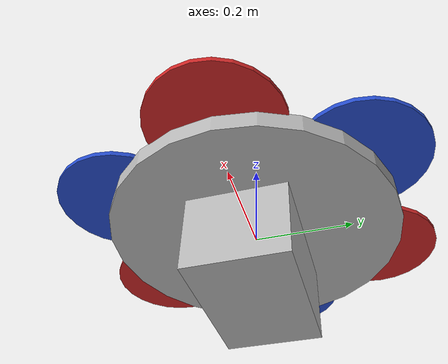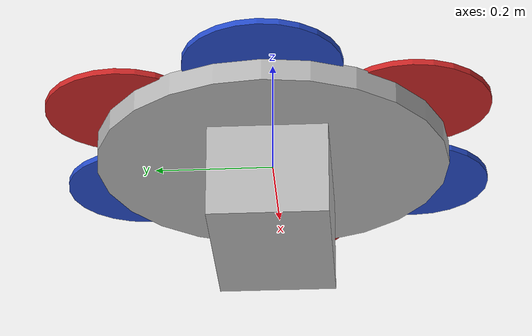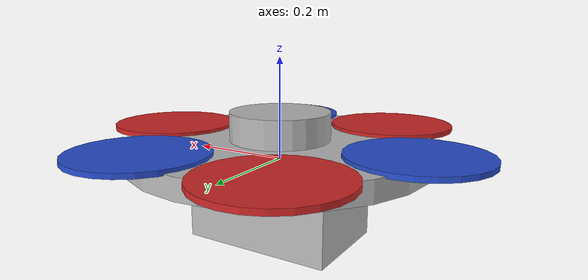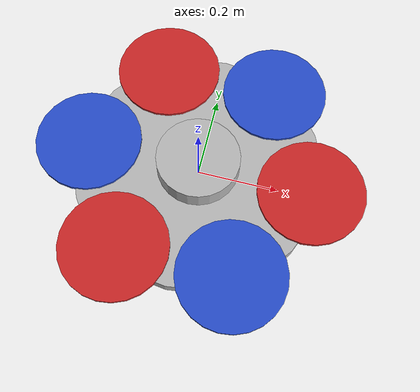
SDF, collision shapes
<sdf version='1.6'>
  <model name='wasp'>
    <link name='base_link'>
      <pose frame=''>0 0 0 0 -0 0</pose>
      <inertial>
        <pose frame=''>0 0 -0.1 0 -0 0</pose>
        <mass>1</mass>
        <inertia>
          <ixx>0.038</ixx>
          <ixy>0</ixy>
          <ixz>0</ixz>
          <iyy>0.043</iyy>
          <iyz>0</iyz>
          <izz>0.0068</izz>
        </inertia>
      </inertial>
      <collision name='base_link_fixed_joint_lump__frame_collision'>
        <pose frame=''>0 0 0.02 0 -0 0</pose>
        <geometry>
          <cylinder>
            <length>0.04</length>
            <radius>0.3</radius>
          </cylinder>
        </geometry>
      </collision>
      <collision name='base_link_fixed_joint_lump__rollcage_collision_1'>
        <pose frame=''>0 0 0.066 0 -0 0</pose>
        <geometry>
          <cylinder>
            <length>0.06</length>
            <radius>0.1</radius>
          </cylinder>
        </geometry>
      </collision>
      <collision name='base_link_fixed_joint_lump__lander_collision_2'>
        <pose frame=''>0 0 -0.08 0 -0 0</pose>
        <geometry>
          <box>
            <size>0.3 0.2 0.16</size>
          </box>
        </geometry>
      </collision>
      <visual name='base_link_visual'>
        <pose frame=''>0 0 0 0 -0 0</pose>
        <geometry>
          <mesh>
            <scale>1 1 1</scale>
            <uri>model://wasp_gazebo/meshes/core.dae</uri>
          </mesh>
        </geometry>
        <material>
          <script>
            <uri>__default__</uri>
            <name>__default__</name>
          </script>
        </material>
      </visual>
      <visual name='base_link_fixed_joint_lump__arm_0_visual_1'>
        <pose frame=''>0.075 0 0.0125 0 -0 1.5708</pose>
        <geometry>
          <mesh>
            <scale>1 1 1</scale>
            <uri>model://wasp/meshes/wasp_arm.dae</uri>
          </mesh>
        </geometry>
      </visual>
      <visual name='base_link_fixed_joint_lump__motor_0_visual_2'>
        <pose frame=''>0.277 0 0.0125 0 -0 0</pose>
        <geometry>
          <mesh>
            <scale>1 1 1</scale>
            <uri>model://wasp/meshes/wasp_motor.dae</uri>
          </mesh>
        </geometry>
      </visual>
      <visual name='base_link_fixed_joint_lump__arm_1_visual_3'>
        <pose frame=''>0.0375 0.064952 0.0125 0 -0 2.61799</pose>
        <geometry>
          <mesh>
            <scale>1 1 1</scale>
            <uri>model://wasp/meshes/wasp_arm.dae</uri>
          </mesh>
        </geometry>
      </visual>
      <visual name='base_link_fixed_joint_lump__motor_1_visual_4'>
        <pose frame=''>0.1385 0.239889 0.0125 0 -0 0</pose>
        <geometry>
          <mesh>
            <scale>1 1 1</scale>
            <uri>model://wasp/meshes/wasp_motor.dae</uri>
          </mesh>
        </geometry>
      </visual>
      <visual name='base_link_fixed_joint_lump__arm_2_visual_5'>
        <pose frame=''>-0.0375 0.064952 0.0125 0 -0 -2.61799</pose>
        <geometry>
          <mesh>
            <scale>1 1 1</scale>
            <uri>model://wasp/meshes/wasp_arm.dae</uri>
          </mesh>
        </geometry>
      </visual>
      <visual name='base_link_fixed_joint_lump__motor_2_visual_6'>
        <pose frame=''>-0.1385 0.239889 0.0125 0 -0 0</pose>
        <geometry>
          <mesh>
            <scale>1 1 1</scale>
            <uri>model://wasp/meshes/wasp_motor.dae</uri>
          </mesh>
        </geometry>
      </visual>
      <visual name='base_link_fixed_joint_lump__arm_3_visual_7'>
        <pose frame=''>-0.075 0 0.0125 0 -0 -1.5708</pose>
        <geometry>
          <mesh>
            <scale>1 1 1</scale>
            <uri>model://wasp/meshes/wasp_arm.dae</uri>
          </mesh>
        </geometry>
      </visual>
      <visual name='base_link_fixed_joint_lump__motor_3_visual_8'>
        <pose frame=''>-0.277 0 0.0125 0 -0 0</pose>
        <geometry>
          <mesh>
            <scale>1 1 1</scale>
            <uri>model://wasp/meshes/wasp_motor.dae</uri>
          </mesh>
        </geometry>
      </visual>
      <visual name='base_link_fixed_joint_lump__arm_4_visual_9'>
        <pose frame=''>-0.0375 -0.064952 0.0125 0 -0 -0.523599</pose>
        <geometry>
          <mesh>
            <scale>1 1 1</scale>
            <uri>model://wasp/meshes/wasp_arm.dae</uri>
          </mesh>
        </geometry>
      </visual>
      <visual name='base_link_fixed_joint_lump__motor_4_visual_10'>
        <pose frame=''>-0.1385 -0.239889 0.0125 0 -0 0</pose>
        <geometry>
          <mesh>
            <scale>1 1 1</scale>
            <uri>model://wasp/meshes/wasp_motor.dae</uri>
          </mesh>
        </geometry>
      </visual>
      <visual name='base_link_fixed_joint_lump__arm_5_visual_11'>
        <pose frame=''>0.0375 -0.064952 0.0125 0 -0 0.523599</pose>
        <geometry>
          <mesh>
            <scale>1 1 1</scale>
            <uri>model://wasp/meshes/wasp_arm.dae</uri>
          </mesh>
        </geometry>
      </visual>
      <visual name='base_link_fixed_joint_lump__motor_5_visual_12'>
        <pose frame=''>0.1385 -0.239889 0.0125 0 -0 0</pose>
        <geometry>
          <mesh>
            <scale>1 1 1</scale>
            <uri>model://wasp/meshes/wasp_motor.dae</uri>
          </mesh>
        </geometry>
      </visual>
      <visual name='base_link_fixed_joint_lump__leg_0_visual_13'>
        <pose frame=''>0.08044 0.044648 -0.063 0 -0 2.0775</pose>
        <geometry>
          <mesh>
            <scale>1 1 1</scale>
            <uri>model://wasp/meshes/wasp_leg.dae</uri>
          </mesh>
        </geometry>
      </visual>
      <visual name='base_link_fixed_joint_lump__leg_1_visual_14'>
        <pose frame=''>0.08044 -0.044648 -0.063 0 -0 1.06409</pose>
        <geometry>
          <mesh>
            <scale>1 1 1</scale>
            <uri>model://wasp/meshes/wasp_leg.dae</uri>
          </mesh>
        </geometry>
      </visual>
      <visual name='base_link_fixed_joint_lump__leg_2_visual_15'>
        <pose frame=''>-0.08044 -0.044648 -0.063 0 -0 -1.06409</pose>
        <geometry>
          <mesh>
            <scale>1 1 1</scale>
            <uri>model://wasp/meshes/wasp_leg.dae</uri>
          </mesh>
        </geometry>
      </visual>
      <visual name='base_link_fixed_joint_lump__leg_3_visual_16'>
        <pose frame=''>-0.08044 0.044648 -0.063 0 -0 -2.0775</pose>
        <geometry>
          <mesh>
            <scale>1 1 1</scale>
            <uri>model://wasp/meshes/wasp_leg.dae</uri>
          </mesh>
        </geometry>
      </visual>
      <gravity>1</gravity>
      <velocity_decay/>
      <self_collide>0</self_collide>
    </link>
    <link name='rotor_0'>
      <pose frame=''>0.277 0 0.042 0 -0 0</pose>
      <inertial>
        <pose frame=''>0 0 0 0 -0 1.5708</pose>
        <mass>0.025</mass>
        <inertia>
          <ixx>9.75e-06</ixx>
          <ixy>0</ixy>
          <ixz>0</ixz>
          <iyy>0.0001667</iyy>
          <iyz>0</iyz>
          <izz>0.0001667</izz>
        </inertia>
      </inertial>
      <collision name='rotor_0_collision'>
        <pose frame=''>0 0 0 0 -0 1.5708</pose>
        <geometry>
          <cylinder>
            <length>0.01</length>
            <radius>0.13</radius>
          </cylinder>
        </geometry>
        <surface>
          <contact>
            <ode/>
          </contact>
          <friction>
            <ode/>
          </friction>
        </surface>
      </collision>
      <visual name='rotor_0_visual'>
        <pose frame=''>0 0 0 0 -0 1.5708</pose>
        <geometry>
          <mesh>
            <scale>1 1 1</scale>
            <uri>model://wasp/meshes/wasp_prop_cw.dae</uri>
          </mesh>
        </geometry>
        <material>
          <script>
            <name>Gazebo/Red</name>
            <uri>file://media/materials/scripts/gazebo.material</uri>
          </script>
        </material>
      </visual>
      <gravity>1</gravity>
      <velocity_decay/>
      <self_collide>0</self_collide>
    </link>
    <joint name='rotor_0_joint' type='revolute'>
      <child>rotor_0</child>
      <parent>base_link</parent>
      <axis>
        <xyz>0 0 1</xyz>
        <limit>
          <lower>-1e+16</lower>
          <upper>1e+16</upper>
        </limit>
        <dynamics>
          <damping>0.004</damping>
          <friction>0</friction>
          <spring_reference>0</spring_reference>
          <spring_stiffness>0</spring_stiffness>
        </dynamics>
        <use_parent_model_frame>0</use_parent_model_frame>
      </axis>
    </joint>
    <link name='rotor_1'>
      <pose frame=''>0.1385 0.239889 0.042 0 -0 0</pose>
      <inertial>
        <pose frame=''>0 0 0 0 -0 2.61799</pose>
        <mass>0.025</mass>
        <inertia>
          <ixx>9.75e-06</ixx>
          <ixy>0</ixy>
          <ixz>0</ixz>
          <iyy>0.0001667</iyy>
          <iyz>0</iyz>
          <izz>0.0001667</izz>
        </inertia>
      </inertial>
      <collision name='rotor_1_collision'>
        <pose frame=''>0 0 0 0 -0 2.61799</pose>
        <geometry>
          <cylinder>
            <length>0.01</length>
            <radius>0.13</radius>
          </cylinder>
        </geometry>
        <surface>
          <contact>
            <ode/>
          </contact>
          <friction>
            <ode/>
          </friction>
        </surface>
      </collision>
      <visual name='rotor_1_visual'>
        <pose frame=''>0 0 0 0 -0 2.61799</pose>
        <geometry>
          <mesh>
            <scale>1 1 1</scale>
            <uri>model://wasp/meshes/wasp_prop_ccw.dae</uri>
          </mesh>
        </geometry>
        <material>
          <script>
            <name>Gazebo/Blue</name>
            <uri>file://media/materials/scripts/gazebo.material</uri>
          </script>
        </material>
      </visual>
      <gravity>1</gravity>
      <velocity_decay/>
      <self_collide>0</self_collide>
    </link>
    <joint name='rotor_1_joint' type='revolute'>
      <child>rotor_1</child>
      <parent>base_link</parent>
      <axis>
        <xyz>0 0 1</xyz>
        <limit>
          <lower>-1e+16</lower>
          <upper>1e+16</upper>
        </limit>
        <dynamics>
          <damping>0.004</damping>
          <friction>0</friction>
          <spring_reference>0</spring_reference>
          <spring_stiffness>0</spring_stiffness>
        </dynamics>
        <use_parent_model_frame>0</use_parent_model_frame>
      </axis>
    </joint>
    <link name='rotor_2'>
      <pose frame=''>-0.1385 0.239889 0.042 0 -0 0</pose>
      <inertial>
        <pose frame=''>0 0 0 0 -0 -2.61799</pose>
        <mass>0.025</mass>
        <inertia>
          <ixx>9.75e-06</ixx>
          <ixy>0</ixy>
          <ixz>0</ixz>
          <iyy>0.0001667</iyy>
          <iyz>0</iyz>
          <izz>0.0001667</izz>
        </inertia>
      </inertial>
      <collision name='rotor_2_collision'>
        <pose frame=''>0 0 0 0 -0 -2.61799</pose>
        <geometry>
          <cylinder>
            <length>0.01</length>
            <radius>0.13</radius>
          </cylinder>
        </geometry>
        <surface>
          <contact>
            <ode/>
          </contact>
          <friction>
            <ode/>
          </friction>
        </surface>
      </collision>
      <visual name='rotor_2_visual'>
        <pose frame=''>0 0 0 0 -0 -2.61799</pose>
        <geometry>
          <mesh>
            <scale>1 1 1</scale>
            <uri>model://wasp/meshes/wasp_prop_cw.dae</uri>
          </mesh>
        </geometry>
        <material>
          <script>
            <name>Gazebo/Red</name>
            <uri>file://media/materials/scripts/gazebo.material</uri>
          </script>
        </material>
      </visual>
      <gravity>1</gravity>
      <velocity_decay/>
      <self_collide>0</self_collide>
    </link>
    <joint name='rotor_2_joint' type='revolute'>
      <child>rotor_2</child>
      <parent>base_link</parent>
      <axis>
        <xyz>0 0 1</xyz>
        <limit>
          <lower>-1e+16</lower>
          <upper>1e+16</upper>
        </limit>
        <dynamics>
          <damping>0.004</damping>
          <friction>0</friction>
          <spring_reference>0</spring_reference>
          <spring_stiffness>0</spring_stiffness>
        </dynamics>
        <use_parent_model_frame>0</use_parent_model_frame>
      </axis>
    </joint>
    <link name='rotor_3'>
      <pose frame=''>-0.277 0 0.042 0 -0 0</pose>
      <inertial>
        <pose frame=''>0 0 0 0 -0 -1.5708</pose>
        <mass>0.025</mass>
        <inertia>
          <ixx>9.75e-06</ixx>
          <ixy>0</ixy>
          <ixz>0</ixz>
          <iyy>0.0001667</iyy>
          <iyz>0</iyz>
          <izz>0.0001667</izz>
        </inertia>
      </inertial>
      <collision name='rotor_3_collision'>
        <pose frame=''>0 0 0 0 -0 -1.5708</pose>
        <geometry>
          <cylinder>
            <length>0.01</length>
            <radius>0.13</radius>
          </cylinder>
        </geometry>
        <surface>
          <contact>
            <ode/>
          </contact>
          <friction>
            <ode/>
          </friction>
        </surface>
      </collision>
      <visual name='rotor_3_visual'>
        <pose frame=''>0 0 0 0 -0 -1.5708</pose>
        <geometry>
          <mesh>
            <scale>1 1 1</scale>
            <uri>model://wasp/meshes/wasp_prop_ccw.dae</uri>
          </mesh>
        </geometry>
        <material>
          <script>
            <name>Gazebo/Blue</name>
            <uri>file://media/materials/scripts/gazebo.material</uri>
          </script>
        </material>
      </visual>
      <gravity>1</gravity>
      <velocity_decay/>
      <self_collide>0</self_collide>
    </link>
    <joint name='rotor_3_joint' type='revolute'>
      <child>rotor_3</child>
      <parent>base_link</parent>
      <axis>
        <xyz>0 0 1</xyz>
        <limit>
          <lower>-1e+16</lower>
          <upper>1e+16</upper>
        </limit>
        <dynamics>
          <damping>0.004</damping>
          <friction>0</friction>
          <spring_reference>0</spring_reference>
          <spring_stiffness>0</spring_stiffness>
        </dynamics>
        <use_parent_model_frame>0</use_parent_model_frame>
      </axis>
    </joint>
    <link name='rotor_4'>
      <pose frame=''>-0.1385 -0.239889 0.042 0 -0 0</pose>
      <inertial>
        <pose frame=''>0 0 0 0 -0 -0.523599</pose>
        <mass>0.025</mass>
        <inertia>
          <ixx>9.75e-06</ixx>
          <ixy>0</ixy>
          <ixz>0</ixz>
          <iyy>0.0001667</iyy>
          <iyz>0</iyz>
          <izz>0.0001667</izz>
        </inertia>
      </inertial>
      <collision name='rotor_4_collision'>
        <pose frame=''>0 0 0 0 -0 -0.523599</pose>
        <geometry>
          <cylinder>
            <length>0.01</length>
            <radius>0.13</radius>
          </cylinder>
        </geometry>
        <surface>
          <contact>
            <ode/>
          </contact>
          <friction>
            <ode/>
          </friction>
        </surface>
      </collision>
      <visual name='rotor_4_visual'>
        <pose frame=''>0 0 0 0 -0 -0.523599</pose>
        <geometry>
          <mesh>
            <scale>1 1 1</scale>
            <uri>model://wasp/meshes/wasp_prop_cw.dae</uri>
          </mesh>
        </geometry>
        <material>
          <script>
            <name>Gazebo/Red</name>
            <uri>file://media/materials/scripts/gazebo.material</uri>
          </script>
        </material>
      </visual>
      <gravity>1</gravity>
      <velocity_decay/>
      <self_collide>0</self_collide>
    </link>
    <joint name='rotor_4_joint' type='revolute'>
      <child>rotor_4</child>
      <parent>base_link</parent>
      <axis>
        <xyz>0 0 1</xyz>
        <limit>
          <lower>-1e+16</lower>
          <upper>1e+16</upper>
        </limit>
        <dynamics>
          <damping>0.004</damping>
          <friction>0</friction>
          <spring_reference>0</spring_reference>
          <spring_stiffness>0</spring_stiffness>
        </dynamics>
        <use_parent_model_frame>0</use_parent_model_frame>
      </axis>
    </joint>
    <link name='rotor_5'>
      <pose frame=''>0.1385 -0.239889 0.042 0 -0 0</pose>
      <inertial>
        <pose frame=''>0 0 0 0 -0 0.523599</pose>
        <mass>0.025</mass>
        <inertia>
          <ixx>9.75e-06</ixx>
          <ixy>0</ixy>
          <ixz>0</ixz>
          <iyy>0.0001667</iyy>
          <iyz>0</iyz>
          <izz>0.0001667</izz>
        </inertia>
      </inertial>
      <collision name='rotor_5_collision'>
        <pose frame=''>0 0 0 0 -0 0.523599</pose>
        <geometry>
          <cylinder>
            <length>0.01</length>
            <radius>0.13</radius>
          </cylinder>
        </geometry>
        <surface>
          <contact>
            <ode/>
          </contact>
          <friction>
            <ode/>
          </friction>
        </surface>
      </collision>
      <visual name='rotor_5_visual'>
        <pose frame=''>0 0 0 0 -0 0.523599</pose>
        <geometry>
          <mesh>
            <scale>1 1 1</scale>
            <uri>model://wasp/meshes/wasp_prop_ccw.dae</uri>
          </mesh>
        </geometry>
        <material>
          <script>
            <name>Gazebo/Blue</name>
            <uri>file://media/materials/scripts/gazebo.material</uri>
          </script>
        </material>
      </visual>
      <gravity>1</gravity>
      <velocity_decay/>
      <self_collide>0</self_collide>
    </link>
    <joint name='rotor_5_joint' type='revolute'>
      <child>rotor_5</child>
      <parent>base_link</parent>
      <axis>
        <xyz>0 0 1</xyz>
        <limit>
          <lower>-1e+16</lower>
          <upper>1e+16</upper>
        </limit>
        <dynamics>
          <damping>0.004</damping>
          <friction>0</friction>
          <spring_reference>0</spring_reference>
          <spring_stiffness>0</spring_stiffness>
        </dynamics>
        <use_parent_model_frame>0</use_parent_model_frame>
      </axis>
    </joint>
    <link name='wasp/ground_truth/odometry_sensorgt_link'>
      <pose frame=''>0 0 0 0 -0 0</pose>
      <inertial>
        <pose frame=''>0 0 0 0 -0 0</pose>
        <mass>0.15</mass>
        <inertia>
          <ixx>0.0001</ixx>
          <ixy>0</ixy>
          <ixz>0</ixz>
          <iyy>0.0002</iyy>
          <iyz>0</iyz>
          <izz>0.0002</izz>
        </inertia>
      </inertial>
      <self_collide>0</self_collide>
    </link>
    <joint name='wasp/ground_truth/odometry_sensorgt_joint' type='revolute'>
      <child>wasp/ground_truth/odometry_sensorgt_link</child>
      <parent>base_link</parent>
      <axis>
        <xyz>0 0 1</xyz>
        <limit>
          <lower>0</lower>
          <upper>0</upper>
          <effort>0</effort>
          <velocity>0</velocity>
        </limit>
        <dynamics>
          <damping>1</damping>
          <spring_reference>0</spring_reference>
          <spring_stiffness>0</spring_stiffness>
        </dynamics>
        <use_parent_model_frame>1</use_parent_model_frame>
      </axis>
      <physics>
        <ode>
          <implicit_spring_damper>1</implicit_spring_damper>
        </ode>
      </physics>
    </joint>
    <link name='wasp/imu_link'>
      <inertial>
        <pose frame=''>0 0 0 0 -0 0</pose>
        <mass>0.15</mass>
        <inertia>
          <ixx>1e-05</ixx>
          <ixy>0</ixy>
          <ixz>0</ixz>
          <iyy>2e-05</iyy>
          <iyz>0</iyz>
          <izz>2e-05</izz>
        </inertia>
      </inertial>
      <sensor name='imu_sensor' type='imu'>
        <pose frame=''>0 0 0 -3.14159 -0 0</pose>
        <always_on>1</always_on>
        <update_rate>1000</update_rate>
      </sensor>
      <self_collide>0</self_collide>
    </link>
    <joint name='wasp/imu_joint' type='revolute'>
      <child>wasp/imu_link</child>
      <parent>base_link</parent>
      <axis>
        <xyz>0 0 1</xyz>
        <limit>
          <lower>0</lower>
          <upper>0</upper>
          <effort>0</effort>
          <velocity>0</velocity>
        </limit>
        <dynamics>
          <damping>1</damping>
          <spring_reference>0</spring_reference>
          <spring_stiffness>0</spring_stiffness>
        </dynamics>
        <use_parent_model_frame>1</use_parent_model_frame>
      </axis>
      <physics>
        <ode>
          <implicit_spring_damper>1</implicit_spring_damper>
        </ode>
      </physics>
    </joint>
    <plugin name='rotor_0_blade_1' filename='libLiftDragPlugin.so'>
      <a0>0.3</a0>
      <alpha_stall>1.4</alpha_stall>
      <cla>4.2500</cla>
      <cda>0.10</cda>
      <cma>0.00</cma>
      <cla_stall>-0.025</cla_stall>
      <cda_stall>0.0</cda_stall>
      <cma_stall>0.0</cma_stall>
      <area>0.002</area>
      <air_density>1.2041</air_density>
      <cp>0.084 0 0</cp>
      <forward>0 1 0</forward>
      <upward>0 0 1</upward>
      <link_name>wasp::rotor_0</link_name>
    </plugin>
    <plugin name='rotor_0_blade_2' filename='libLiftDragPlugin.so'>
      <a0>0.3</a0>
      <alpha_stall>1.4</alpha_stall>
      <cla>4.2500</cla>
      <cda>0.10</cda>
      <cma>0.00</cma>
      <cla_stall>-0.025</cla_stall>
      <cda_stall>0.0</cda_stall>
      <cma_stall>0.0</cma_stall>
      <area>0.002</area>
      <air_density>1.2041</air_density>
      <cp>-0.084 0 0</cp>
      <forward>0 -1 0</forward>
      <upward>0 0 1</upward>
      <link_name>wasp::rotor_0</link_name>
    </plugin>
    <plugin name='rotor_1_blade_1' filename='libLiftDragPlugin.so'>
      <a0>0.3</a0>
      <alpha_stall>1.4</alpha_stall>
      <cla>4.2500</cla>
      <cda>0.10</cda>
      <cma>0.00</cma>
      <cla_stall>-0.025</cla_stall>
      <cda_stall>0.0</cda_stall>
      <cma_stall>0.0</cma_stall>
      <area>0.002</area>
      <air_density>1.2041</air_density>
      <cp>0.084 0 0</cp>
      <forward>0 -1 0</forward>
      <upward>0 0 1</upward>
      <link_name>wasp::rotor_1</link_name>
    </plugin>
    <plugin name='rotor_1_blade_2' filename='libLiftDragPlugin.so'>
      <a0>0.3</a0>
      <alpha_stall>1.4</alpha_stall>
      <cla>4.2500</cla>
      <cda>0.10</cda>
      <cma>0.00</cma>
      <cla_stall>-0.025</cla_stall>
      <cda_stall>0.0</cda_stall>
      <cma_stall>0.0</cma_stall>
      <area>0.002</area>
      <air_density>1.2041</air_density>
      <cp>-0.084 0 0</cp>
      <forward>0 1 0</forward>
      <upward>0 0 1</upward>
      <link_name>wasp::rotor_1</link_name>
    </plugin>
    <plugin name='rotor_2_blade_1' filename='libLiftDragPlugin.so'>
      <a0>0.3</a0>
      <alpha_stall>1.4</alpha_stall>
      <cla>4.2500</cla>
      <cda>0.10</cda>
      <cma>0.00</cma>
      <cla_stall>-0.025</cla_stall>
      <cda_stall>0.0</cda_stall>
      <cma_stall>0.0</cma_stall>
      <area>0.002</area>
      <air_density>1.2041</air_density>
      <cp>0.084 0 0</cp>
      <forward>0 1 0</forward>
      <upward>0 0 1</upward>
      <link_name>wasp::rotor_2</link_name>
    </plugin>
    <plugin name='rotor_2_blade_2' filename='libLiftDragPlugin.so'>
      <a0>0.3</a0>
      <alpha_stall>1.4</alpha_stall>
      <cla>4.2500</cla>
      <cda>0.10</cda>
      <cma>0.00</cma>
      <cla_stall>-0.025</cla_stall>
      <cda_stall>0.0</cda_stall>
      <cma_stall>0.0</cma_stall>
      <area>0.002</area>
      <air_density>1.2041</air_density>
      <cp>-0.084 0 0</cp>
      <forward>0 -1 0</forward>
      <upward>0 0 1</upward>
      <link_name>wasp::rotor_2</link_name>
    </plugin>
    <plugin name='rotor_3_blade_1' filename='libLiftDragPlugin.so'>
      <a0>0.3</a0>
      <alpha_stall>1.4</alpha_stall>
      <cla>4.2500</cla>
      <cda>0.10</cda>
      <cma>0.00</cma>
      <cla_stall>-0.025</cla_stall>
      <cda_stall>0.0</cda_stall>
      <cma_stall>0.0</cma_stall>
      <area>0.002</area>
      <air_density>1.2041</air_density>
      <cp>0.084 0 0</cp>
      <forward>0 -1 0</forward>
      <upward>0 0 1</upward>
      <link_name>wasp::rotor_3</link_name>
    </plugin>
    <plugin name='rotor_3_blade_2' filename='libLiftDragPlugin.so'>
      <a0>0.3</a0>
      <alpha_stall>1.4</alpha_stall>
      <cla>4.2500</cla>
      <cda>0.10</cda>
      <cma>0.00</cma>
      <cla_stall>-0.025</cla_stall>
      <cda_stall>0.0</cda_stall>
      <cma_stall>0.0</cma_stall>
      <area>0.002</area>
      <air_density>1.2041</air_density>
      <cp>-0.084 0 0</cp>
      <forward>0 1 0</forward>
      <upward>0 0 1</upward>
      <link_name>wasp::rotor_3</link_name>
    </plugin>
    <plugin name='rotor_4_blade_1' filename='libLiftDragPlugin.so'>
      <a0>0.3</a0>
      <alpha_stall>1.4</alpha_stall>
      <cla>4.2500</cla>
      <cda>0.10</cda>
      <cma>0.00</cma>
      <cla_stall>-0.025</cla_stall>
      <cda_stall>0.0</cda_stall>
      <cma_stall>0.0</cma_stall>
      <area>0.002</area>
      <air_density>1.2041</air_density>
      <cp>0.084 0 0</cp>
      <forward>0 1 0</forward>
      <upward>0 0 1</upward>
      <link_name>wasp::rotor_4</link_name>
    </plugin>
    <plugin name='rotor_4_blade_2' filename='libLiftDragPlugin.so'>
      <a0>0.3</a0>
      <alpha_stall>1.4</alpha_stall>
      <cla>4.2500</cla>
      <cda>0.10</cda>
      <cma>0.00</cma>
      <cla_stall>-0.025</cla_stall>
      <cda_stall>0.0</cda_stall>
      <cma_stall>0.0</cma_stall>
      <area>0.002</area>
      <air_density>1.2041</air_density>
      <cp>-0.084 0 0</cp>
      <forward>0 -1 0</forward>
      <upward>0 0 1</upward>
      <link_name>wasp::rotor_4</link_name>
    </plugin>
    <plugin name='rotor_5_blade_1' filename='libLiftDragPlugin.so'>
      <a0>0.3</a0>
      <alpha_stall>1.4</alpha_stall>
      <cla>4.2500</cla>
      <cda>0.10</cda>
      <cma>0.00</cma>
      <cla_stall>-0.025</cla_stall>
      <cda_stall>0.0</cda_stall>
      <cma_stall>0.0</cma_stall>
      <area>0.002</area>
      <air_density>1.2041</air_density>
      <cp>0.084 0 0</cp>
      <forward>0 -1 0</forward>
      <upward>0 0 1</upward>
      <link_name>wasp::rotor_5</link_name>
    </plugin>
    <plugin name='rotor_5_blade_2' filename='libLiftDragPlugin.so'>
      <a0>0.3</a0>
      <alpha_stall>1.4</alpha_stall>
      <cla>4.2500</cla>
      <cda>0.10</cda>
      <cma>0.00</cma>
      <cla_stall>-0.025</cla_stall>
      <cda_stall>0.0</cda_stall>
      <cma_stall>0.0</cma_stall>
      <area>0.002</area>
      <air_density>1.2041</air_density>
      <cp>-0.084 0 0</cp>
      <forward>0 1 0</forward>
      <upward>0 0 1</upward>
      <link_name>wasp::rotor_5</link_name>
    </plugin>
    <static>0</static>
    <plugin name='arducopter_plugin' filename='libArduPilotPlugin.so'>
      <fdm_addr>127.0.0.1</fdm_addr>
      <fdm_port_in>9002</fdm_port_in>
      <fdm_port_out>9003</fdm_port_out>
      <modelXYZToAirplaneXForwardZDown>0 0 0 3.141593 0 0</modelXYZToAirplaneXForwardZDown>
      <gazeboXYZToNED>0 0 0 3.141593 0 0</gazeboXYZToNED>
      <imuName>wasp::wasp/imu_link::imu_sensor</imuName>
      <connectionTimeoutMaxCount>5</connectionTimeoutMaxCount>
      <control channel='0'>
        <type>VELOCITY</type>
        <offset>0</offset>
        <p_gain>0.20</p_gain>
        <i_gain>0</i_gain>
        <d_gain>0</d_gain>
        <i_max>0</i_max>
        <i_min>0</i_min>
        <cmd_max>2.5</cmd_max>
        <cmd_min>-2.5</cmd_min>
        <jointName>wasp::rotor_0_joint</jointName>
        <multiplier>920</multiplier>
        <controlVelocitySlowdownSim>1</controlVelocitySlowdownSim>
      </control>
      <control channel='1'>
        <type>VELOCITY</type>
        <offset>0</offset>
        <p_gain>0.20</p_gain>
        <i_gain>0</i_gain>
        <d_gain>0</d_gain>
        <i_max>0</i_max>
        <i_min>0</i_min>
        <cmd_max>2.5</cmd_max>
        <cmd_min>-2.5</cmd_min>
        <jointName>wasp::rotor_1_joint</jointName>
        <multiplier>-920</multiplier>
        <controlVelocitySlowdownSim>1</controlVelocitySlowdownSim>
      </control>
      <control channel='2'>
        <type>VELOCITY</type>
        <offset>0</offset>
        <p_gain>0.20</p_gain>
        <i_gain>0</i_gain>
        <d_gain>0</d_gain>
        <i_max>0</i_max>
        <i_min>0</i_min>
        <cmd_max>2.5</cmd_max>
        <cmd_min>-2.5</cmd_min>
        <jointName>wasp::rotor_2_joint</jointName>
        <multiplier>920</multiplier>
        <controlVelocitySlowdownSim>1</controlVelocitySlowdownSim>
      </control>
      <control channel='3'>
        <type>VELOCITY</type>
        <offset>0</offset>
        <p_gain>0.20</p_gain>
        <i_gain>0</i_gain>
        <d_gain>0</d_gain>
        <i_max>0</i_max>
        <i_min>0</i_min>
        <cmd_max>2.5</cmd_max>
        <cmd_min>-2.5</cmd_min>
        <jointName>wasp::rotor_3_joint</jointName>
        <multiplier>-920</multiplier>
        <controlVelocitySlowdownSim>1</controlVelocitySlowdownSim>
      </control>
      <control channel='4'>
        <type>VELOCITY</type>
        <offset>0</offset>
        <p_gain>0.20</p_gain>
        <i_gain>0</i_gain>
        <d_gain>0</d_gain>
        <i_max>0</i_max>
        <i_min>0</i_min>
        <cmd_max>2.5</cmd_max>
        <cmd_min>-2.5</cmd_min>
        <jointName>wasp::rotor_4_joint</jointName>
        <multiplier>920</multiplier>
        <controlVelocitySlowdownSim>1</controlVelocitySlowdownSim>
      </control>
      <control channel='5'>
        <type>VELOCITY</type>
        <offset>0</offset>
        <p_gain>0.20</p_gain>
        <i_gain>0</i_gain>
        <d_gain>0</d_gain>
        <i_max>0</i_max>
        <i_min>0</i_min>
        <cmd_max>2.5</cmd_max>
        <cmd_min>-2.5</cmd_min>
        <jointName>wasp::rotor_5_joint</jointName>
        <multiplier>-920</multiplier>
        <controlVelocitySlowdownSim>1</controlVelocitySlowdownSim>
      </control>
    </plugin>
  </model>
</sdf>
